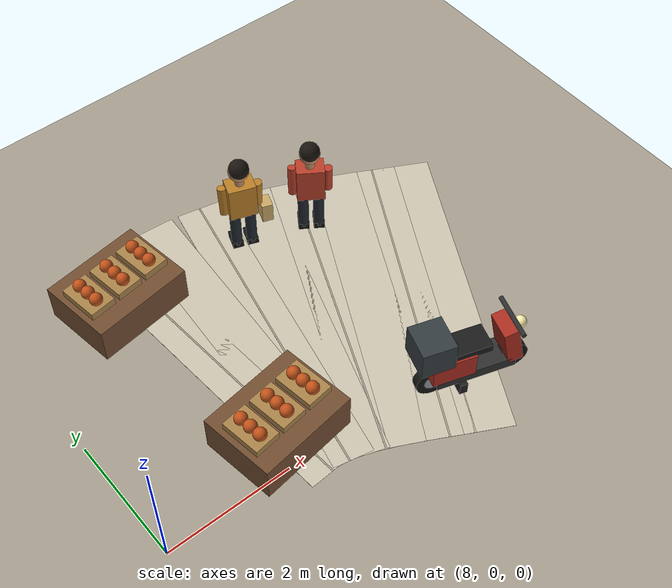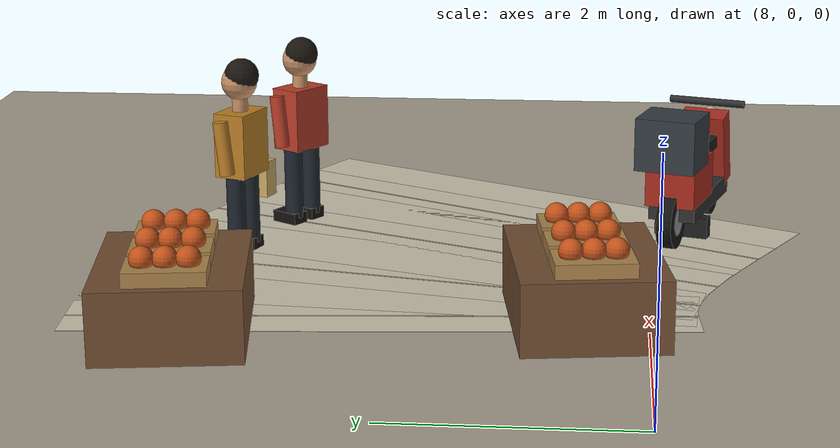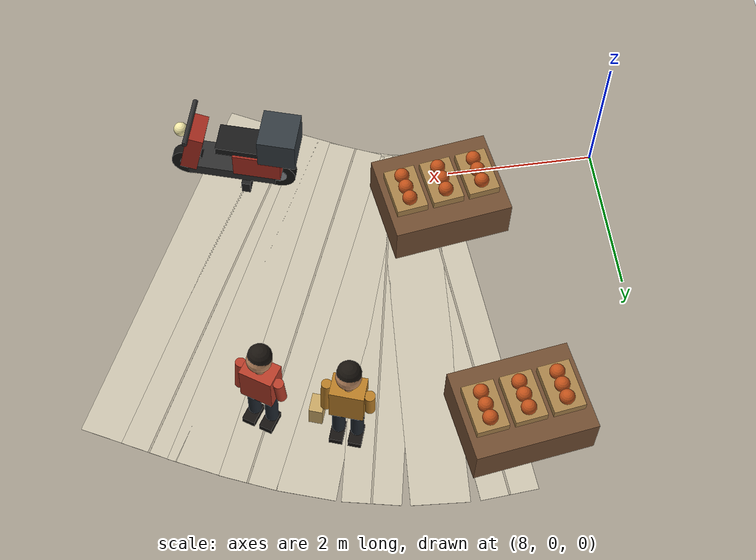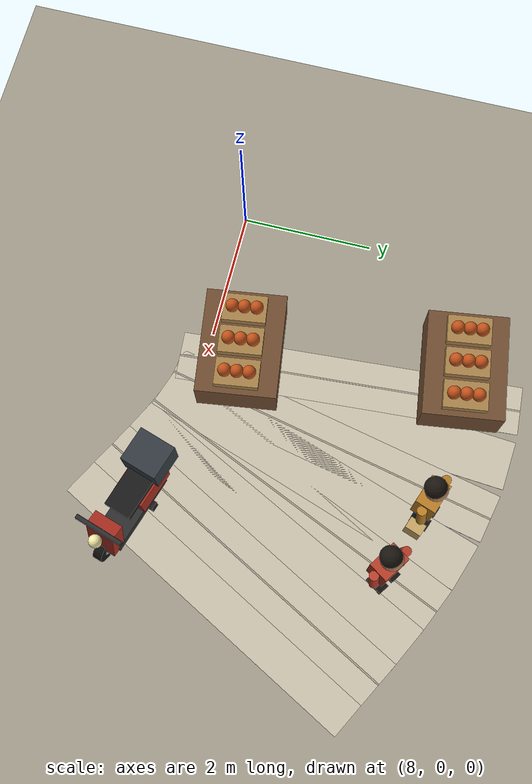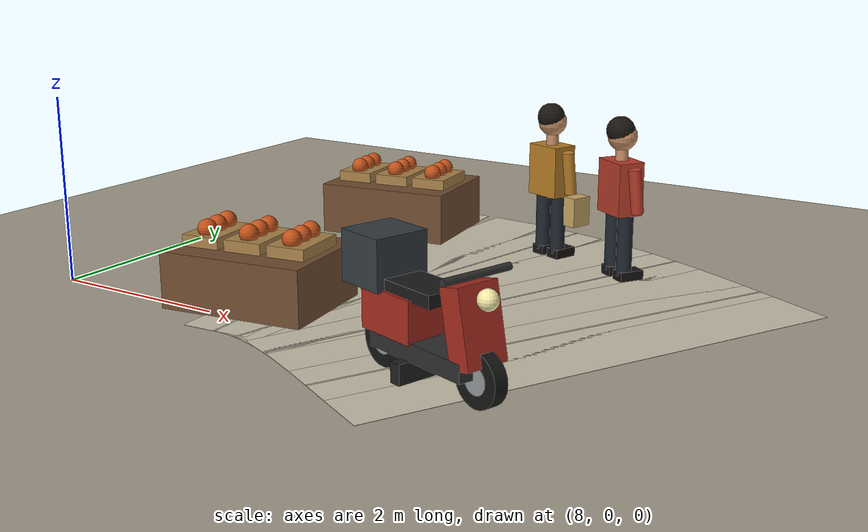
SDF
<sdf version="1.10">
 <world name="swan_town">
  <model name="ground_plane">
   <pose>-14 30 -0.025 0 0 0</pose>
   <static>true</static>
   <link name="link">
    <collision name="collision">
     <geometry><plane><normal>0 0 1</normal><size>100 100</size></plane></geometry>
    </collision>
    <visual name="visual">
     <geometry><plane><normal>0 0 1</normal><size>100 100</size></plane></geometry>
     <material><ambient>0.3 0.5 0.2 1</ambient><diffuse>0.3 0.5 0.2 1</diffuse></material>
    </visual>
   </link>
  </model>
  <model name="ground">
   <static>true</static>
   <pose>15 0 -0.1 0 0 0</pose>
   <link name="body">
    <collision name="box_collision"><geometry><box><size>46 24 0.2</size></box></geometry></collision>
    <visual name="box_visual">
     <geometry><box><size>46 24 0.2</size></box></geometry>
     <material><ambient>0.64 0.61 0.55 1</ambient><diffuse>0.64 0.61 0.55 1</diffuse></material>
    </visual>
   </link>
  </model>
  <model name="market_paving_24">
   <static>true</static>
   <pose>10.25 2.191 0.002 0 0 0.072021</pose>
   <link name="body">
    <visual name="box_visual">
     <geometry><box><size>0.75 5.2 0.004</size></box></geometry>
     <material><ambient>0.79 0.76 0.68 1</ambient><diffuse>0.79 0.76 0.68 1</diffuse></material>
    </visual>
   </link>
  </model>
  <model name="paving_joint_24">
   <static>true</static>
   <pose>10.25 2.191 0.0045 0 0 0.072021</pose>
   <link name="body">
    <visual name="box_visual">
     <geometry><box><size>0.025 5.2 0.001</size></box></geometry>
     <material><ambient>0.67 0.64 0.57 1</ambient><diffuse>0.67 0.64 0.57 1</diffuse></material>
    </visual>
   </link>
  </model>
  <model name="market_paving_25">
   <static>true</static>
   <pose>10.75 2.191 0.002 0 0 -0.072021</pose>
   <link name="body">
    <visual name="box_visual">
     <geometry><box><size>0.75 5.2 0.004</size></box></geometry>
     <material><ambient>0.79 0.76 0.68 1</ambient><diffuse>0.79 0.76 0.68 1</diffuse></material>
    </visual>
   </link>
  </model>
  <model name="market_paving_26">
   <static>true</static>
   <pose>11.25 2.1197 0.002 0 0 -0.2079</pose>
   <link name="body">
    <visual name="box_visual">
     <geometry><box><size>0.75 5.2 0.004</size></box></geometry>
     <material><ambient>0.79 0.76 0.68 1</ambient><diffuse>0.79 0.76 0.68 1</diffuse></material>
    </visual>
   </link>
  </model>
  <model name="paving_joint_26">
   <static>true</static>
   <pose>11.25 2.1197 0.0045 0 0 -0.2079</pose>
   <link name="body">
    <visual name="box_visual">
     <geometry><box><size>0.025 5.2 0.001</size></box></geometry>
     <material><ambient>0.67 0.64 0.57 1</ambient><diffuse>0.67 0.64 0.57 1</diffuse></material>
    </visual>
   </link>
  </model>
  <model name="market_paving_27">
   <static>true</static>
   <pose>11.75 1.9827 0.002 0 0 -0.32217</pose>
   <link name="body">
    <visual name="box_visual">
     <geometry><box><size>0.75 5.2 0.004</size></box></geometry>
     <material><ambient>0.79 0.76 0.68 1</ambient><diffuse>0.79 0.76 0.68 1</diffuse></material>
    </visual>
   </link>
  </model>
  <model name="market_paving_28">
   <static>true</static>
   <pose>12.25 1.7901 0.002 0 0 -0.40758</pose>
   <link name="body">
    <visual name="box_visual">
     <geometry><box><size>0.75 5.2 0.004</size></box></geometry>
     <material><ambient>0.79 0.76 0.68 1</ambient><diffuse>0.79 0.76 0.68 1</diffuse></material>
    </visual>
   </link>
  </model>
  <model name="paving_joint_28">
   <static>true</static>
   <pose>12.25 1.7901 0.0045 0 0 -0.40758</pose>
   <link name="body">
    <visual name="box_visual">
     <geometry><box><size>0.025 5.2 0.001</size></box></geometry>
     <material><ambient>0.67 0.64 0.57 1</ambient><diffuse>0.67 0.64 0.57 1</diffuse></material>
    </visual>
   </link>
  </model>
  <model name="market_paving_29">
   <static>true</static>
   <pose>12.75 1.5562 0.002 0 0 -0.46221</pose>
   <link name="body">
    <visual name="box_visual">
     <geometry><box><size>0.75 5.2 0.004</size></box></geometry>
     <material><ambient>0.79 0.76 0.68 1</ambient><diffuse>0.79 0.76 0.68 1</diffuse></material>
    </visual>
   </link>
  </model>
  <model name="market_paving_30">
   <static>true</static>
   <pose>13.25 1.2978 0.002 0 0 -0.48699</pose>
   <link name="body">
    <visual name="box_visual">
     <geometry><box><size>0.75 5.2 0.004</size></box></geometry>
     <material><ambient>0.79 0.76 0.68 1</ambient><diffuse>0.79 0.76 0.68 1</diffuse></material>
    </visual>
   </link>
  </model>
  <model name="paving_joint_30">
   <static>true</static>
   <pose>13.25 1.2978 0.0045 0 0 -0.48699</pose>
   <link name="body">
    <visual name="box_visual">
     <geometry><box><size>0.025 5.2 0.001</size></box></geometry>
     <material><ambient>0.67 0.64 0.57 1</ambient><diffuse>0.67 0.64 0.57 1</diffuse></material>
    </visual>
   </link>
  </model>
  <model name="market_paving_31">
   <static>true</static>
   <pose>13.75 1.0326 0.002 0 0 -0.48375</pose>
   <link name="body">
    <visual name="box_visual">
     <geometry><box><size>0.75 5.2 0.004</size></box></geometry>
     <material><ambient>0.79 0.76 0.68 1</ambient><diffuse>0.79 0.76 0.68 1</diffuse></material>
    </visual>
   </link>
  </model>
  <model name="motorcycle_delivery">
   <static>true</static>
   <pose>12.93 -0.40058 0 0 0 -0.30528</pose>
   <link name="body">
    <collision name="tire_0_collision">
     <pose>-0.61 0 0.25 1.5708 0 0</pose>
     <geometry><cylinder><radius>0.25</radius><length>0.14</length></cylinder></geometry>
    </collision>
    <visual name="tire_0_visual">
     <pose>-0.61 0 0.25 1.5708 0 0</pose>
     <geometry><cylinder><radius>0.25</radius><length>0.14</length></cylinder></geometry>
     <material><ambient>0.075 0.075 0.07 1</ambient><diffuse>0.075 0.075 0.07 1</diffuse></material>
    </visual>
    <visual name="hub_0_visual">
     <pose>-0.61 0 0.25 1.5708 0 0</pose>
     <geometry><cylinder><radius>0.13</radius><length>0.145</length></cylinder></geometry>
     <material><ambient>0.57 0.59 0.6 1</ambient><diffuse>0.57 0.59 0.6 1</diffuse></material>
    </visual>
    <collision name="tire_1_collision">
     <pose>0.62 0 0.25 1.5708 0 0</pose>
     <geometry><cylinder><radius>0.25</radius><length>0.14</length></cylinder></geometry>
    </collision>
    <visual name="tire_1_visual">
     <pose>0.62 0 0.25 1.5708 0 0</pose>
     <geometry><cylinder><radius>0.25</radius><length>0.14</length></cylinder></geometry>
     <material><ambient>0.075 0.075 0.07 1</ambient><diffuse>0.075 0.075 0.07 1</diffuse></material>
    </visual>
    <visual name="hub_1_visual">
     <pose>0.62 0 0.25 1.5708 0 0</pose>
     <geometry><cylinder><radius>0.13</radius><length>0.145</length></cylinder></geometry>
     <material><ambient>0.57 0.59 0.6 1</ambient><diffuse>0.57 0.59 0.6 1</diffuse></material>
    </visual>
    <collision name="deck_collision">
     <pose>0 0 0.33 0 0 0</pose>
     <geometry><box><size>1.2 0.43 0.17</size></box></geometry>
    </collision>
    <visual name="deck_visual">
     <pose>0 0 0.33 0 0 0</pose>
     <geometry><box><size>1.2 0.43 0.17</size></box></geometry>
     <material><ambient>0.18 0.18 0.18 1</ambient><diffuse>0.18 0.18 0.18 1</diffuse></material>
    </visual>
    <collision name="rear_body_collision">
     <pose>-0.36 0 0.59 0 0 0</pose>
     <geometry><box><size>0.65 0.46 0.4</size></box></geometry>
    </collision>
    <visual name="rear_body_visual">
     <pose>-0.36 0 0.59 0 0 0</pose>
     <geometry><box><size>0.65 0.46 0.4</size></box></geometry>
     <material><ambient>0.65 0.17 0.12 1</ambient><diffuse>0.65 0.17 0.12 1</diffuse></material>
    </visual>
    <collision name="seat_collision">
     <pose>-0.2 0 0.83 0 0 0</pose>
     <geometry><box><size>0.8 0.4 0.12</size></box></geometry>
    </collision>
    <visual name="seat_visual">
     <pose>-0.2 0 0.83 0 0 0</pose>
     <geometry><box><size>0.8 0.4 0.12</size></box></geometry>
     <material><ambient>0.1 0.1 0.1 1</ambient><diffuse>0.1 0.1 0.1 1</diffuse></material>
    </visual>
    <collision name="front_fairing_collision">
     <pose>0.53 0 0.69 0 -0.2 0</pose>
     <geometry><box><size>0.23 0.43 0.69</size></box></geometry>
    </collision>
    <visual name="front_fairing_visual">
     <pose>0.53 0 0.69 0 -0.2 0</pose>
     <geometry><box><size>0.23 0.43 0.69</size></box></geometry>
     <material><ambient>0.65 0.17 0.12 1</ambient><diffuse>0.65 0.17 0.12 1</diffuse></material>
    </visual>
    <collision name="handlebar_collision">
     <pose>0.56 0 1.12 1.5708 0 0</pose>
     <geometry><cylinder><radius>0.035</radius><length>0.72</length></cylinder></geometry>
    </collision>
    <visual name="handlebar_visual">
     <pose>0.56 0 1.12 1.5708 0 0</pose>
     <geometry><cylinder><radius>0.035</radius><length>0.72</length></cylinder></geometry>
     <material><ambient>0.18 0.18 0.18 1</ambient><diffuse>0.18 0.18 0.18 1</diffuse></material>
    </visual>
    <visual name="headlight_visual">
     <pose>0.7 0 0.94 0 0 0</pose>
     <geometry><sphere><radius>0.095</radius></sphere></geometry>
     <material><ambient>0.96 0.92 0.66 1</ambient><diffuse>0.96 0.92 0.66 1</diffuse></material>
    </visual>
    <collision name="delivery_box_collision">
     <pose>-0.65 0 1.01 0 0 0</pose>
     <geometry><box><size>0.51 0.55 0.48</size></box></geometry>
    </collision>
    <visual name="delivery_box_visual">
     <pose>-0.65 0 1.01 0 0 0</pose>
     <geometry><box><size>0.51 0.55 0.48</size></box></geometry>
     <material><ambient>0.2 0.23 0.25 1</ambient><diffuse>0.2 0.23 0.25 1</diffuse></material>
    </visual>
    <collision name="stand_collision">
     <pose>-0.2 0 0.1 0 0 0</pose>
     <geometry><box><size>0.12 0.5 0.2</size></box></geometry>
    </collision>
    <visual name="stand_visual">
     <pose>-0.2 0 0.1 0 0 0</pose>
     <geometry><box><size>0.12 0.5 0.2</size></box></geometry>
     <material><ambient>0.12 0.12 0.12 1</ambient><diffuse>0.12 0.12 0.12 1</diffuse></material>
    </visual>
   </link>
  </model>
  <model name="aisle_display_-1">
   <static>true</static>
   <pose>10.233 0.53064 0.3 0 0 0.14195</pose>
   <link name="body">
    <collision name="box_collision"><geometry><box><size>1.6 1.2 0.6</size></box></geometry></collision>
    <visual name="box_visual">
     <geometry><box><size>1.6 1.2 0.6</size></box></geometry>
     <material><ambient>0.44 0.3 0.19 1</ambient><diffuse>0.44 0.3 0.19 1</diffuse></material>
    </visual>
    <collision name="basket_-0.5_collision">
     <pose>-0.5 0 0.36 0 0 0</pose>
     <geometry><box><size>0.42 0.65 0.12</size></box></geometry>
    </collision>
    <visual name="basket_-0.5_visual">
     <pose>-0.5 0 0.36 0 0 0</pose>
     <geometry><box><size>0.42 0.65 0.12</size></box></geometry>
     <material><ambient>0.66 0.51 0.29 1</ambient><diffuse>0.66 0.51 0.29 1</diffuse></material>
    </visual>
    <visual name="goods_-0.5_-1_visual">
     <pose>-0.5 -0.18 0.47 0 0 0</pose>
     <geometry><sphere><radius>0.1</radius></sphere></geometry>
     <material><ambient>0.76 0.32 0.1 1</ambient><diffuse>0.76 0.32 0.1 1</diffuse></material>
    </visual>
    <visual name="goods_-0.5_0_visual">
     <pose>-0.5 0 0.47 0 0 0</pose>
     <geometry><sphere><radius>0.1</radius></sphere></geometry>
     <material><ambient>0.76 0.32 0.1 1</ambient><diffuse>0.76 0.32 0.1 1</diffuse></material>
    </visual>
    <visual name="goods_-0.5_1_visual">
     <pose>-0.5 0.18 0.47 0 0 0</pose>
     <geometry><sphere><radius>0.1</radius></sphere></geometry>
     <material><ambient>0.76 0.32 0.1 1</ambient><diffuse>0.76 0.32 0.1 1</diffuse></material>
    </visual>
    <collision name="basket_0_collision">
     <pose>0 0 0.36 0 0 0</pose>
     <geometry><box><size>0.42 0.65 0.12</size></box></geometry>
    </collision>
    <visual name="basket_0_visual">
     <pose>0 0 0.36 0 0 0</pose>
     <geometry><box><size>0.42 0.65 0.12</size></box></geometry>
     <material><ambient>0.66 0.51 0.29 1</ambient><diffuse>0.66 0.51 0.29 1</diffuse></material>
    </visual>
    <visual name="goods_0_-1_visual">
     <pose>0 -0.18 0.47 0 0 0</pose>
     <geometry><sphere><radius>0.1</radius></sphere></geometry>
     <material><ambient>0.76 0.32 0.1 1</ambient><diffuse>0.76 0.32 0.1 1</diffuse></material>
    </visual>
    <visual name="goods_0_0_visual">
     <pose>0 0 0.47 0 0 0</pose>
     <geometry><sphere><radius>0.1</radius></sphere></geometry>
     <material><ambient>0.76 0.32 0.1 1</ambient><diffuse>0.76 0.32 0.1 1</diffuse></material>
    </visual>
    <visual name="goods_0_1_visual">
     <pose>0 0.18 0.47 0 0 0</pose>
     <geometry><sphere><radius>0.1</radius></sphere></geometry>
     <material><ambient>0.76 0.32 0.1 1</ambient><diffuse>0.76 0.32 0.1 1</diffuse></material>
    </visual>
    <collision name="basket_0.5_collision">
     <pose>0.5 0 0.36 0 0 0</pose>
     <geometry><box><size>0.42 0.65 0.12</size></box></geometry>
    </collision>
    <visual name="basket_0.5_visual">
     <pose>0.5 0 0.36 0 0 0</pose>
     <geometry><box><size>0.42 0.65 0.12</size></box></geometry>
     <material><ambient>0.66 0.51 0.29 1</ambient><diffuse>0.66 0.51 0.29 1</diffuse></material>
    </visual>
    <visual name="goods_0.5_-1_visual">
     <pose>0.5 -0.18 0.47 0 0 0</pose>
     <geometry><sphere><radius>0.1</radius></sphere></geometry>
     <material><ambient>0.76 0.32 0.1 1</ambient><diffuse>0.76 0.32 0.1 1</diffuse></material>
    </visual>
    <visual name="goods_0.5_0_visual">
     <pose>0.5 0 0.47 0 0 0</pose>
     <geometry><sphere><radius>0.1</radius></sphere></geometry>
     <material><ambient>0.76 0.32 0.1 1</ambient><diffuse>0.76 0.32 0.1 1</diffuse></material>
    </visual>
    <visual name="goods_0.5_1_visual">
     <pose>0.5 0.18 0.47 0 0 0</pose>
     <geometry><sphere><radius>0.1</radius></sphere></geometry>
     <material><ambient>0.76 0.32 0.1 1</ambient><diffuse>0.76 0.32 0.1 1</diffuse></material>
    </visual>
   </link>
  </model>
  <model name="aisle_display_1">
   <static>true</static>
   <pose>9.7666 3.7974 0.3 0 0 0.14195</pose>
   <link name="body">
    <collision name="box_collision"><geometry><box><size>1.6 1.2 0.6</size></box></geometry></collision>
    <visual name="box_visual">
     <geometry><box><size>1.6 1.2 0.6</size></box></geometry>
     <material><ambient>0.44 0.3 0.19 1</ambient><diffuse>0.44 0.3 0.19 1</diffuse></material>
    </visual>
    <collision name="basket_-0.5_collision">
     <pose>-0.5 0 0.36 0 0 0</pose>
     <geometry><box><size>0.42 0.65 0.12</size></box></geometry>
    </collision>
    <visual name="basket_-0.5_visual">
     <pose>-0.5 0 0.36 0 0 0</pose>
     <geometry><box><size>0.42 0.65 0.12</size></box></geometry>
     <material><ambient>0.66 0.51 0.29 1</ambient><diffuse>0.66 0.51 0.29 1</diffuse></material>
    </visual>
    <visual name="goods_-0.5_-1_visual">
     <pose>-0.5 -0.18 0.47 0 0 0</pose>
     <geometry><sphere><radius>0.1</radius></sphere></geometry>
     <material><ambient>0.76 0.32 0.1 1</ambient><diffuse>0.76 0.32 0.1 1</diffuse></material>
    </visual>
    <visual name="goods_-0.5_0_visual">
     <pose>-0.5 0 0.47 0 0 0</pose>
     <geometry><sphere><radius>0.1</radius></sphere></geometry>
     <material><ambient>0.76 0.32 0.1 1</ambient><diffuse>0.76 0.32 0.1 1</diffuse></material>
    </visual>
    <visual name="goods_-0.5_1_visual">
     <pose>-0.5 0.18 0.47 0 0 0</pose>
     <geometry><sphere><radius>0.1</radius></sphere></geometry>
     <material><ambient>0.76 0.32 0.1 1</ambient><diffuse>0.76 0.32 0.1 1</diffuse></material>
    </visual>
    <collision name="basket_0_collision">
     <pose>0 0 0.36 0 0 0</pose>
     <geometry><box><size>0.42 0.65 0.12</size></box></geometry>
    </collision>
    <visual name="basket_0_visual">
     <pose>0 0 0.36 0 0 0</pose>
     <geometry><box><size>0.42 0.65 0.12</size></box></geometry>
     <material><ambient>0.66 0.51 0.29 1</ambient><diffuse>0.66 0.51 0.29 1</diffuse></material>
    </visual>
    <visual name="goods_0_-1_visual">
     <pose>0 -0.18 0.47 0 0 0</pose>
     <geometry><sphere><radius>0.1</radius></sphere></geometry>
     <material><ambient>0.76 0.32 0.1 1</ambient><diffuse>0.76 0.32 0.1 1</diffuse></material>
    </visual>
    <visual name="goods_0_0_visual">
     <pose>0 0 0.47 0 0 0</pose>
     <geometry><sphere><radius>0.1</radius></sphere></geometry>
     <material><ambient>0.76 0.32 0.1 1</ambient><diffuse>0.76 0.32 0.1 1</diffuse></material>
    </visual>
    <visual name="goods_0_1_visual">
     <pose>0 0.18 0.47 0 0 0</pose>
     <geometry><sphere><radius>0.1</radius></sphere></geometry>
     <material><ambient>0.76 0.32 0.1 1</ambient><diffuse>0.76 0.32 0.1 1</diffuse></material>
    </visual>
    <collision name="basket_0.5_collision">
     <pose>0.5 0 0.36 0 0 0</pose>
     <geometry><box><size>0.42 0.65 0.12</size></box></geometry>
    </collision>
    <visual name="basket_0.5_visual">
     <pose>0.5 0 0.36 0 0 0</pose>
     <geometry><box><size>0.42 0.65 0.12</size></box></geometry>
     <material><ambient>0.66 0.51 0.29 1</ambient><diffuse>0.66 0.51 0.29 1</diffuse></material>
    </visual>
    <visual name="goods_0.5_-1_visual">
     <pose>0.5 -0.18 0.47 0 0 0</pose>
     <geometry><sphere><radius>0.1</radius></sphere></geometry>
     <material><ambient>0.76 0.32 0.1 1</ambient><diffuse>0.76 0.32 0.1 1</diffuse></material>
    </visual>
    <visual name="goods_0.5_0_visual">
     <pose>0.5 0 0.47 0 0 0</pose>
     <geometry><sphere><radius>0.1</radius></sphere></geometry>
     <material><ambient>0.76 0.32 0.1 1</ambient><diffuse>0.76 0.32 0.1 1</diffuse></material>
    </visual>
    <visual name="goods_0.5_1_visual">
     <pose>0.5 0.18 0.47 0 0 0</pose>
     <geometry><sphere><radius>0.1</radius></sphere></geometry>
     <material><ambient>0.76 0.32 0.1 1</ambient><diffuse>0.76 0.32 0.1 1</diffuse></material>
    </visual>
   </link>
  </model>
  <model name="crowd_03">
   <static>true</static>
   <pose>11.937 3.6499 0 0 0 1.2317</pose>
   <link name="body">
    <collision name="leg_-1_collision">
     <pose>0 -0.12 0.4 0 0 0</pose>
     <geometry><cylinder><radius>0.085</radius><length>0.68</length></cylinder></geometry>
    </collision>
    <visual name="leg_-1_visual">
     <pose>0 -0.12 0.4 0 0 0</pose>
     <geometry><cylinder><radius>0.085</radius><length>0.68</length></cylinder></geometry>
     <material><ambient>0.12 0.15 0.18 1</ambient><diffuse>0.12 0.15 0.18 1</diffuse></material>
    </visual>
    <collision name="shoe_-1_collision">
     <pose>0.06 -0.12 0.055 0 0 0</pose>
     <geometry><box><size>0.28 0.17 0.11</size></box></geometry>
    </collision>
    <visual name="shoe_-1_visual">
     <pose>0.06 -0.12 0.055 0 0 0</pose>
     <geometry><box><size>0.28 0.17 0.11</size></box></geometry>
     <material><ambient>0.08 0.07 0.06 1</ambient><diffuse>0.08 0.07 0.06 1</diffuse></material>
    </visual>
    <collision name="arm_-1_collision">
     <pose>0.02 -0.27 1.02 0 -0.12 0</pose>
     <geometry><cylinder><radius>0.068</radius><length>0.48</length></cylinder></geometry>
    </collision>
    <visual name="arm_-1_visual">
     <pose>0.02 -0.27 1.02 0 -0.12 0</pose>
     <geometry><cylinder><radius>0.068</radius><length>0.48</length></cylinder></geometry>
     <material><ambient>0.72 0.49 0.15 1</ambient><diffuse>0.72 0.49 0.15 1</diffuse></material>
    </visual>
    <collision name="leg_1_collision">
     <pose>0 0.12 0.4 0 0 0</pose>
     <geometry><cylinder><radius>0.085</radius><length>0.68</length></cylinder></geometry>
    </collision>
    <visual name="leg_1_visual">
     <pose>0 0.12 0.4 0 0 0</pose>
     <geometry><cylinder><radius>0.085</radius><length>0.68</length></cylinder></geometry>
     <material><ambient>0.12 0.15 0.18 1</ambient><diffuse>0.12 0.15 0.18 1</diffuse></material>
    </visual>
    <collision name="shoe_1_collision">
     <pose>0.06 0.12 0.055 0 0 0</pose>
     <geometry><box><size>0.28 0.17 0.11</size></box></geometry>
    </collision>
    <visual name="shoe_1_visual">
     <pose>0.06 0.12 0.055 0 0 0</pose>
     <geometry><box><size>0.28 0.17 0.11</size></box></geometry>
     <material><ambient>0.08 0.07 0.06 1</ambient><diffuse>0.08 0.07 0.06 1</diffuse></material>
    </visual>
    <collision name="arm_1_collision">
     <pose>0.02 0.27 1.02 0 0.12 0</pose>
     <geometry><cylinder><radius>0.068</radius><length>0.48</length></cylinder></geometry>
    </collision>
    <visual name="arm_1_visual">
     <pose>0.02 0.27 1.02 0 0.12 0</pose>
     <geometry><cylinder><radius>0.068</radius><length>0.48</length></cylinder></geometry>
     <material><ambient>0.72 0.49 0.15 1</ambient><diffuse>0.72 0.49 0.15 1</diffuse></material>
    </visual>
    <collision name="torso_collision">
     <pose>0 0 1.02 0 0 0</pose>
     <geometry><box><size>0.3 0.43 0.58</size></box></geometry>
    </collision>
    <visual name="torso_visual">
     <pose>0 0 1.02 0 0 0</pose>
     <geometry><box><size>0.3 0.43 0.58</size></box></geometry>
     <material><ambient>0.72 0.49 0.15 1</ambient><diffuse>0.72 0.49 0.15 1</diffuse></material>
    </visual>
    <visual name="neck_visual">
     <pose>0 0 1.37 0 0 0</pose>
     <geometry><cylinder><radius>0.07</radius><length>0.13</length></cylinder></geometry>
     <material><ambient>0.77 0.56 0.4 1</ambient><diffuse>0.77 0.56 0.4 1</diffuse></material>
    </visual>
    <collision name="head_collision">
     <pose>0 0 1.57 0 0 0</pose>
     <geometry><sphere><radius>0.16</radius></sphere></geometry>
    </collision>
    <visual name="head_visual">
     <pose>0 0 1.57 0 0 0</pose>
     <geometry><sphere><radius>0.16</radius></sphere></geometry>
     <material><ambient>0.77 0.56 0.4 1</ambient><diffuse>0.77 0.56 0.4 1</diffuse></material>
    </visual>
    <visual name="hair_visual">
     <pose>-0.025 0 1.63 0 0 0</pose>
     <geometry><sphere><radius>0.155</radius></sphere></geometry>
     <material><ambient>0.1 0.08 0.06 1</ambient><diffuse>0.1 0.08 0.06 1</diffuse></material>
    </visual>
    <collision name="shopping_bag_collision">
     <pose>0.04 -0.38 0.6 0 0 0</pose>
     <geometry><box><size>0.24 0.17 0.33</size></box></geometry>
    </collision>
    <visual name="shopping_bag_visual">
     <pose>0.04 -0.38 0.6 0 0 0</pose>
     <geometry><box><size>0.24 0.17 0.33</size></box></geometry>
     <material><ambient>0.78 0.65 0.39 1</ambient><diffuse>0.78 0.65 0.39 1</diffuse></material>
    </visual>
   </link>
  </model>
  <model name="crowd_04">
   <static>true</static>
   <pose>12.964 3.2786 0 0 0 0.98558</pose>
   <link name="body">
    <collision name="leg_-1_collision">
     <pose>0 -0.12 0.4 0 0 0</pose>
     <geometry><cylinder><radius>0.085</radius><length>0.68</length></cylinder></geometry>
    </collision>
    <visual name="leg_-1_visual">
     <pose>0 -0.12 0.4 0 0 0</pose>
     <geometry><cylinder><radius>0.085</radius><length>0.68</length></cylinder></geometry>
     <material><ambient>0.12 0.15 0.18 1</ambient><diffuse>0.12 0.15 0.18 1</diffuse></material>
    </visual>
    <collision name="shoe_-1_collision">
     <pose>0.06 -0.12 0.055 0 0 0</pose>
     <geometry><box><size>0.28 0.17 0.11</size></box></geometry>
    </collision>
    <visual name="shoe_-1_visual">
     <pose>0.06 -0.12 0.055 0 0 0</pose>
     <geometry><box><size>0.28 0.17 0.11</size></box></geometry>
     <material><ambient>0.08 0.07 0.06 1</ambient><diffuse>0.08 0.07 0.06 1</diffuse></material>
    </visual>
    <collision name="arm_-1_collision">
     <pose>0.02 -0.27 1.02 0 -0.12 0</pose>
     <geometry><cylinder><radius>0.068</radius><length>0.48</length></cylinder></geometry>
    </collision>
    <visual name="arm_-1_visual">
     <pose>0.02 -0.27 1.02 0 -0.12 0</pose>
     <geometry><cylinder><radius>0.068</radius><length>0.48</length></cylinder></geometry>
     <material><ambient>0.72 0.24 0.16 1</ambient><diffuse>0.72 0.24 0.16 1</diffuse></material>
    </visual>
    <collision name="leg_1_collision">
     <pose>0 0.12 0.4 0 0 0</pose>
     <geometry><cylinder><radius>0.085</radius><length>0.68</length></cylinder></geometry>
    </collision>
    <visual name="leg_1_visual">
     <pose>0 0.12 0.4 0 0 0</pose>
     <geometry><cylinder><radius>0.085</radius><length>0.68</length></cylinder></geometry>
     <material><ambient>0.12 0.15 0.18 1</ambient><diffuse>0.12 0.15 0.18 1</diffuse></material>
    </visual>
    <collision name="shoe_1_collision">
     <pose>0.06 0.12 0.055 0 0 0</pose>
     <geometry><box><size>0.28 0.17 0.11</size></box></geometry>
    </collision>
    <visual name="shoe_1_visual">
     <pose>0.06 0.12 0.055 0 0 0</pose>
     <geometry><box><size>0.28 0.17 0.11</size></box></geometry>
     <material><ambient>0.08 0.07 0.06 1</ambient><diffuse>0.08 0.07 0.06 1</diffuse></material>
    </visual>
    <collision name="arm_1_collision">
     <pose>0.02 0.27 1.02 0 0.12 0</pose>
     <geometry><cylinder><radius>0.068</radius><length>0.48</length></cylinder></geometry>
    </collision>
    <visual name="arm_1_visual">
     <pose>0.02 0.27 1.02 0 0.12 0</pose>
     <geometry><cylinder><radius>0.068</radius><length>0.48</length></cylinder></geometry>
     <material><ambient>0.72 0.24 0.16 1</ambient><diffuse>0.72 0.24 0.16 1</diffuse></material>
    </visual>
    <collision name="torso_collision">
     <pose>0 0 1.02 0 0 0</pose>
     <geometry><box><size>0.3 0.43 0.58</size></box></geometry>
    </collision>
    <visual name="torso_visual">
     <pose>0 0 1.02 0 0 0</pose>
     <geometry><box><size>0.3 0.43 0.58</size></box></geometry>
     <material><ambient>0.72 0.24 0.16 1</ambient><diffuse>0.72 0.24 0.16 1</diffuse></material>
    </visual>
    <visual name="neck_visual">
     <pose>0 0 1.37 0 0 0</pose>
     <geometry><cylinder><radius>0.07</radius><length>0.13</length></cylinder></geometry>
     <material><ambient>0.77 0.56 0.4 1</ambient><diffuse>0.77 0.56 0.4 1</diffuse></material>
    </visual>
    <collision name="head_collision">
     <pose>0 0 1.57 0 0 0</pose>
     <geometry><sphere><radius>0.16</radius></sphere></geometry>
    </collision>
    <visual name="head_visual">
     <pose>0 0 1.57 0 0 0</pose>
     <geometry><sphere><radius>0.16</radius></sphere></geometry>
     <material><ambient>0.77 0.56 0.4 1</ambient><diffuse>0.77 0.56 0.4 1</diffuse></material>
    </visual>
    <visual name="hair_visual">
     <pose>-0.025 0 1.63 0 0 0</pose>
     <geometry><sphere><radius>0.155</radius></sphere></geometry>
     <material><ambient>0.1 0.08 0.06 1</ambient><diffuse>0.1 0.08 0.06 1</diffuse></material>
    </visual>
   </link>
  </model>
 </world>
</sdf>
